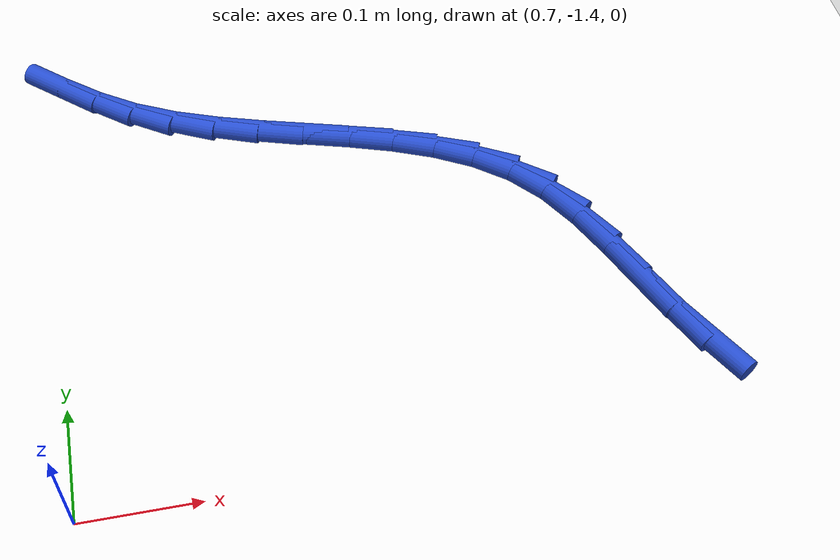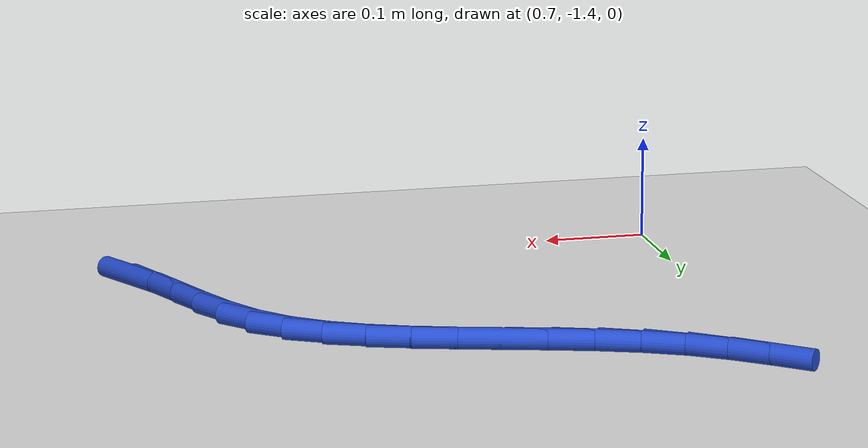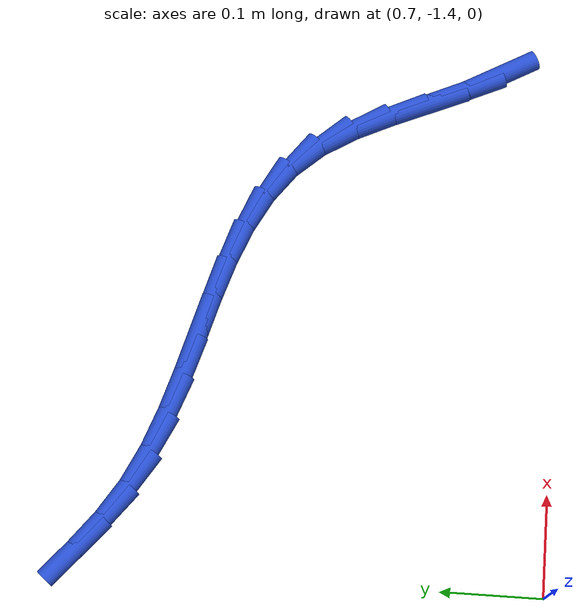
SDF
<sdf version="1.6">
 <world name="default">
  <model name="ground_plane">
   <static>1</static>
   <link name="link">
    <collision name="collision">
     <geometry><plane><normal>0 0 1</normal><size>100 100</size></plane></geometry>
     <surface><friction><ode><mu>100</mu><mu2>50</mu2></ode></friction></surface>
    </collision>
    <visual name="visual">
     <cast_shadows>0</cast_shadows>
     <geometry><plane><normal>0 0 1</normal><size>100 100</size></plane></geometry>
     <material>
      <script><uri>file://media/materials/scripts/gazebo.material</uri><name>Gazebo/WhiteGlow</name></script>
     </material>
    </visual>
   </link>
  </model>
  <model name="line">
   <link name="link_161">
    <pose>1.2278127660942353 -1.336602821645178 0.01 0 1.57 -1.061655374980046</pose>
    <collision name="collision">
     <geometry><cylinder><radius>0.01</radius><length>0.08</length></cylinder></geometry>
    </collision>
    <visual name="visual">
     <material>
      <script><name>Gazebo/Blue</name><uri>file://media/materials/scripts/gazebo.material</uri></script>
     </material>
     <geometry><cylinder><radius>0.01</radius><length>0.08</length></cylinder></geometry>
    </visual>
   </link>
   <link name="link_162">
    <pose>1.2090050226056253 -1.302911161618073 0.01 0 1.57 -1.1469871225329222</pose>
    <collision name="collision">
     <geometry><cylinder><radius>0.01</radius><length>0.08</length></cylinder></geometry>
    </collision>
    <visual name="visual">
     <material>
      <script><name>Gazebo/Blue</name><uri>file://media/materials/scripts/gazebo.material</uri></script>
     </material>
     <geometry><cylinder><radius>0.01</radius><length>0.08</length></cylinder></geometry>
    </visual>
   </link>
   <link name="link_163">
    <pose>1.1923326879542246 -1.2659559059103886 0.01 0 1.57 -1.1670414468639156</pose>
    <collision name="collision">
     <geometry><cylinder><radius>0.01</radius><length>0.08</length></cylinder></geometry>
    </collision>
    <visual name="visual">
     <material>
      <script><name>Gazebo/Blue</name><uri>file://media/materials/scripts/gazebo.material</uri></script>
     </material>
     <geometry><cylinder><radius>0.01</radius><length>0.08</length></cylinder></geometry>
    </visual>
   </link>
   <link name="link_164">
    <pose>1.1760910657037833 -1.2279394727808488 0.01 0 1.57 -1.1273504254460271</pose>
    <collision name="collision">
     <geometry><cylinder><radius>0.01</radius><length>0.08</length></cylinder></geometry>
    </collision>
    <visual name="visual">
     <material>
      <script><name>Gazebo/Blue</name><uri>file://media/materials/scripts/gazebo.material</uri></script>
     </material>
     <geometry><cylinder><radius>0.01</radius><length>0.08</length></cylinder></geometry>
    </visual>
   </link>
   <link name="link_165">
    <pose>1.15857545941805 -1.1910642804881801 0.01 0 1.57 -1.0221862534459163</pose>
    <collision name="collision">
     <geometry><cylinder><radius>0.01</radius><length>0.08</length></cylinder></geometry>
    </collision>
    <visual name="visual">
     <material>
      <script><name>Gazebo/Blue</name><uri>file://media/materials/scripts/gazebo.material</uri></script>
     </material>
     <geometry><cylinder><radius>0.01</radius><length>0.08</length></cylinder></geometry>
    </visual>
   </link>
   <link name="link_166">
    <pose>1.1380811726607734 -1.1575327472911074 0.01 0 1.57 -0.8432432598774834</pose>
    <collision name="collision">
     <geometry><cylinder><radius>0.01</radius><length>0.08</length></cylinder></geometry>
    </collision>
    <visual name="visual">
     <material>
      <script><name>Gazebo/Blue</name><uri>file://media/materials/scripts/gazebo.material</uri></script>
     </material>
     <geometry><cylinder><radius>0.01</radius><length>0.08</length></cylinder></geometry>
    </visual>
   </link>
   <link name="link_167">
    <pose>1.1130231075049741 -1.129394074997948 0.01 0 1.57 -0.649022137445595</pose>
    <collision name="collision">
     <geometry><cylinder><radius>0.01</radius><length>0.08</length></cylinder></geometry>
    </collision>
    <visual name="visual">
     <material>
      <script><name>Gazebo/Blue</name><uri>file://media/materials/scripts/gazebo.material</uri></script>
     </material>
     <geometry><cylinder><radius>0.01</radius><length>0.08</length></cylinder></geometry>
    </visual>
   </link>
   <link name="link_168">
    <pose>1.0832766023465425 -1.1068265150950154 0.01 0 1.57 -0.49362203595756793</pose>
    <collision name="collision">
     <geometry><cylinder><radius>0.01</radius><length>0.08</length></cylinder></geometry>
    </collision>
    <visual name="visual">
     <material>
      <script><name>Gazebo/Blue</name><uri>file://media/materials/scripts/gazebo.material</uri></script>
     </material>
     <geometry><cylinder><radius>0.01</radius><length>0.08</length></cylinder></geometry>
    </visual>
   </link>
   <link name="link_169">
    <pose>1.0496936053906751 -1.0887571940393481 0.01 0 1.57 -0.3816149400623079</pose>
    <collision name="collision">
     <geometry><cylinder><radius>0.01</radius><length>0.08</length></cylinder></geometry>
    </collision>
    <visual name="visual">
     <material>
      <script><name>Gazebo/Blue</name><uri>file://media/materials/scripts/gazebo.material</uri></script>
     </material>
     <geometry><cylinder><radius>0.01</radius><length>0.08</length></cylinder></geometry>
    </visual>
   </link>
   <link name="link_170">
    <pose>1.013143959027491 -1.0740903142272007 0.01 0 1.57 -0.3095473426583435</pose>
    <collision name="collision">
     <geometry><cylinder><radius>0.01</radius><length>0.08</length></cylinder></geometry>
    </collision>
    <visual name="visual">
     <material>
      <script><name>Gazebo/Blue</name><uri>file://media/materials/scripts/gazebo.material</uri></script>
     </material>
     <geometry><cylinder><radius>0.01</radius><length>0.08</length></cylinder></geometry>
    </visual>
   </link>
   <link name="link_171">
    <pose>0.9744975056471101 -1.0617300780548242 0.01 0 1.57 -0.27265594537325355</pose>
    <collision name="collision">
     <geometry><cylinder><radius>0.01</radius><length>0.08</length></cylinder></geometry>
    </collision>
    <visual name="visual">
     <material>
      <script><name>Gazebo/Blue</name><uri>file://media/materials/scripts/gazebo.material</uri></script>
     </material>
     <geometry><cylinder><radius>0.01</radius><length>0.08</length></cylinder></geometry>
    </visual>
   </link>
   <link name="link_172">
    <pose>0.9346240876396511 -1.0505806879184727 0.01 0 1.57 -0.26769460870147604</pose>
    <collision name="collision">
     <geometry><cylinder><radius>0.01</radius><length>0.08</length></cylinder></geometry>
    </collision>
    <visual name="visual">
     <material>
      <script><name>Gazebo/Blue</name><uri>file://media/materials/scripts/gazebo.material</uri></script>
     </material>
     <geometry><cylinder><radius>0.01</radius><length>0.08</length></cylinder></geometry>
    </visual>
   </link>
   <link name="link_173">
    <pose>0.894393547395233 -1.0395463462143986 0.01 0 1.57 -0.29375917830540743</pose>
    <collision name="collision">
     <geometry><cylinder><radius>0.01</radius><length>0.08</length></cylinder></geometry>
    </collision>
    <visual name="visual">
     <material>
      <script><name>Gazebo/Blue</name><uri>file://media/materials/scripts/gazebo.material</uri></script>
     </material>
     <geometry><cylinder><radius>0.01</radius><length>0.08</length></cylinder></geometry>
    </visual>
   </link>
   <link name="link_174">
    <pose>0.8546757273039753 -1.0275312553388543 0.01 0 1.57 -0.3522580068771369</pose>
    <collision name="collision">
     <geometry><cylinder><radius>0.01</radius><length>0.08</length></cylinder></geometry>
    </collision>
    <visual name="visual">
     <material>
      <script><name>Gazebo/Blue</name><uri>file://media/materials/scripts/gazebo.material</uri></script>
     </material>
     <geometry><cylinder><radius>0.01</radius><length>0.08</length></cylinder></geometry>
    </visual>
   </link>
   <link name="link_175">
    <pose>0.8163404697559964 -1.0134396176880927 0.01 0 1.57 -0.4462626448870582</pose>
    <collision name="collision">
     <geometry><cylinder><radius>0.01</radius><length>0.08</length></cylinder></geometry>
    </collision>
    <visual name="visual">
     <material>
      <script><name>Gazebo/Blue</name><uri>file://media/materials/scripts/gazebo.material</uri></script>
     </material>
     <geometry><cylinder><radius>0.01</radius><length>0.08</length></cylinder></geometry>
    </visual>
   </link>
   <link name="link_176">
    <pose>0.7802576171414148 -0.996175635658366 0.01 0 1.57 -0.5689060562782342</pose>
    <collision name="collision">
     <geometry><cylinder><radius>0.01</radius><length>0.08</length></cylinder></geometry>
    </collision>
    <visual name="visual">
     <material>
      <script><name>Gazebo/Blue</name><uri>file://media/materials/scripts/gazebo.material</uri></script>
     </material>
     <geometry><cylinder><radius>0.01</radius><length>0.08</length></cylinder></geometry>
    </visual>
   </link>
   <link name="link_177">
    <pose>0.7470595946977654 -0.9749479485860436 0.01 0 1.57 -0.6632730281841166</pose>
    <collision name="collision">
     <geometry><cylinder><radius>0.01</radius><length>0.08</length></cylinder></geometry>
    </collision>
    <visual name="visual">
     <material>
      <script><name>Gazebo/Blue</name><uri>file://media/materials/scripts/gazebo.material</uri></script>
     </material>
     <geometry><cylinder><radius>0.01</radius><length>0.08</length></cylinder></geometry>
    </visual>
   </link>
   <link name="link_178">
    <pose>0.7160262212999153 -0.9506996254295585 0.01 0 1.57 -0.7074874461126229</pose>
    <collision name="collision">
     <geometry><cylinder><radius>0.01</radius><length>0.08</length></cylinder></geometry>
    </collision>
    <visual name="visual">
     <material>
      <script><name>Gazebo/Blue</name><uri>file://media/materials/scripts/gazebo.material</uri></script>
     </material>
     <geometry><cylinder><radius>0.01</radius><length>0.08</length></cylinder></geometry>
    </visual>
   </link>
  </model>
 </world>
</sdf>
